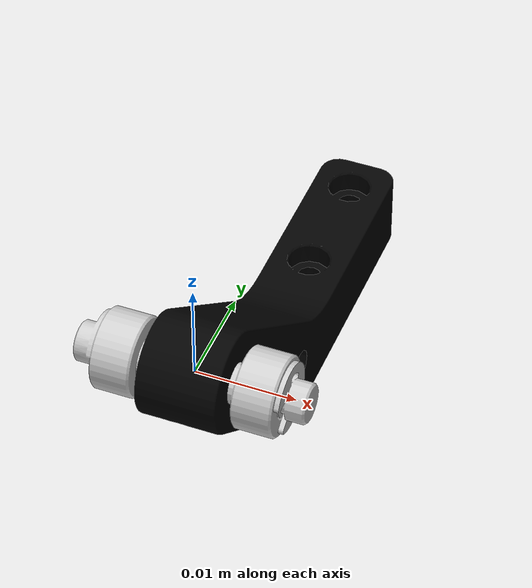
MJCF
<mujoco model="up_link">
  <default>
    <default class="visual">
      <geom group="2" type="mesh" contype="0" conaffinity="0"/>
    </default>
    <default class="collision">
      <geom group="3" type="mesh"/>
    </default>
  </default>
  <asset>
    <material name="black_metal" specular="0.5" shininess="0.49" rgba="0.010000 0.010000 0.010000 1.000000"/>
    <material name="silver" specular="0.5" shininess="0.49" rgba="0.800000 0.800000 0.800000 1.000000"/>
    <mesh file="up_link_0.obj"/>
    <mesh file="up_link_1.obj"/>
    <mesh file="up_link_collision_0.obj"/>
    <mesh file="up_link_collision_1.obj"/>
    <mesh file="up_link_collision_2.obj"/>
  </asset>
  <worldbody>
    <body name="up_link">
      <geom mesh="up_link_0" material="silver" class="visual"/>
      <geom mesh="up_link_1" material="black_metal" class="visual"/>
      <geom mesh="up_link_collision_0" rgba="0.04497866636353287 0.8865952018822497 0.8558919613263154 1" class="collision"/>
      <geom mesh="up_link_collision_1" rgba="0.28456169406256615 0.2850121867224933 0.6758017492430188 1" class="collision"/>
      <geom mesh="up_link_collision_2" rgba="0.9859651604029823 0.5104762495754397 0.6004228343326153 1" class="collision"/>
    </body>
  </worldbody>
</mujoco>
